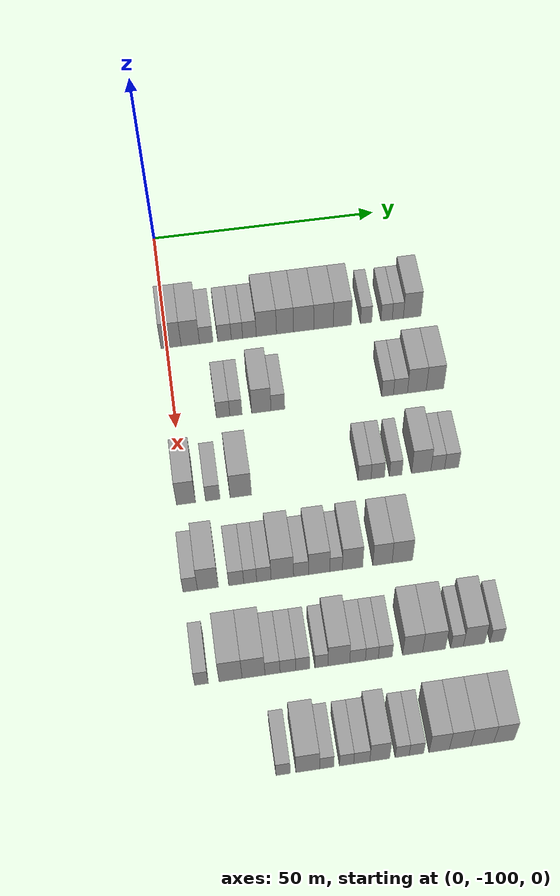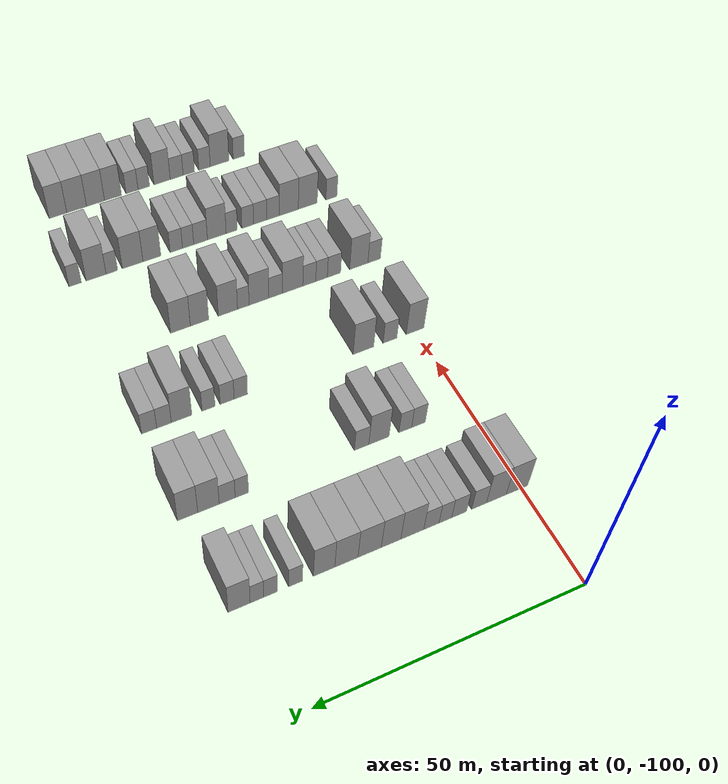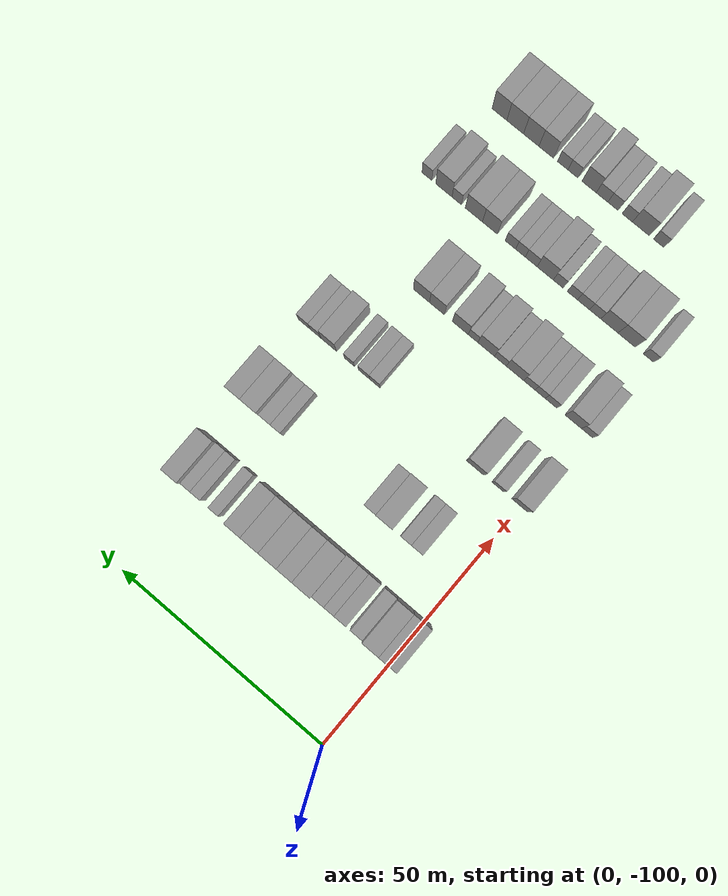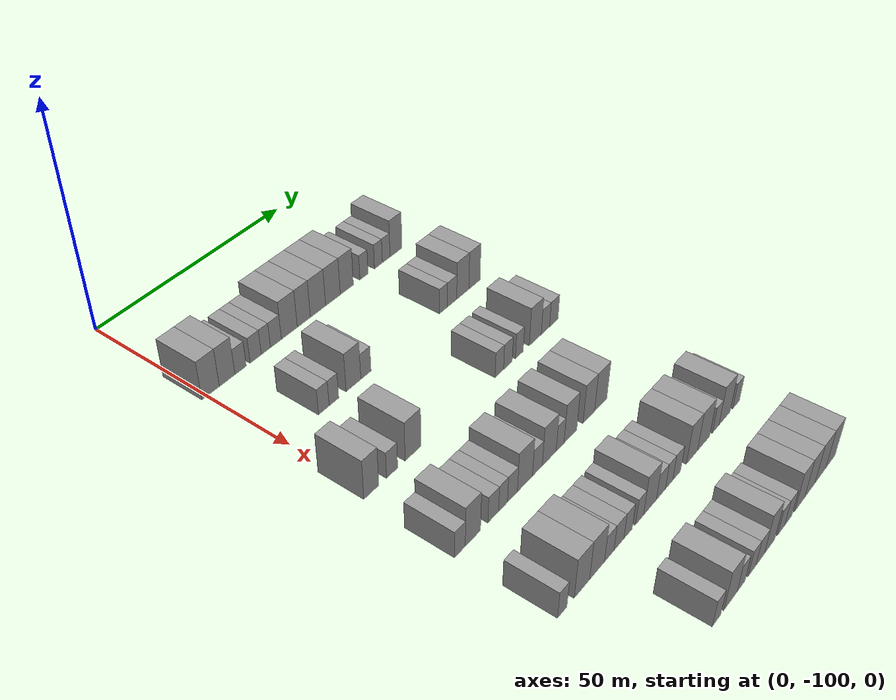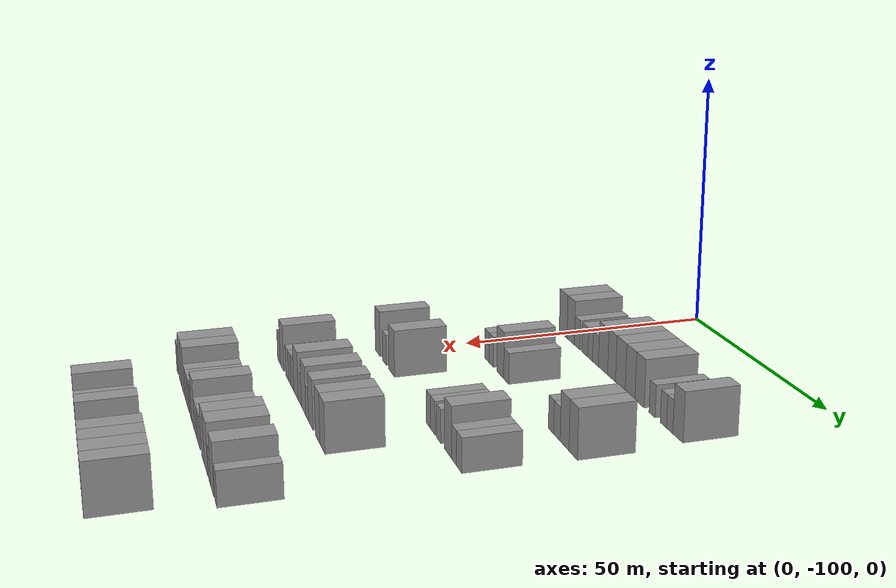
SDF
<sdf version="1.6">
 <world name="default">
  <model name="building_61">
   <static>1</static>
   <pose>25.0000 -99.0919 0 0.000000 0.000000 0.000000</pose>
   <link name="link">
    <pose>0 0 4.50 0 0 0</pose>
    <collision name="collision"><geometry><box><size>10.0000 4.3256 9.0000</size></box></geometry></collision>
    <visual name="visual">
     <cast_shadows>0</cast_shadows>
     <geometry><box><size>10.0000 4.3256 9.0000</size></box></geometry>
     <material>
      <script>
       <uri>model://grey_wall/materials/scripts</uri>
       <uri>model://grey_wall/materials/textures</uri>
       <name>vrc/grey_wall</name>
      </script>
     </material>
    </visual>
   </link>
  </model>
  <model name="building_62">
   <static>1</static>
   <pose>25.0000 -94.9548 0 0.000000 0.000000 0.000000</pose>
   <link name="link">
    <pose>0 0 4.50 0 0 0</pose>
    <collision name="collision"><geometry><box><size>10.0000 3.9485 9.0000</size></box></geometry></collision>
    <visual name="visual">
     <cast_shadows>0</cast_shadows>
     <geometry><box><size>10.0000 3.9485 9.0000</size></box></geometry>
     <material>
      <script>
       <uri>model://grey_wall/materials/scripts</uri>
       <uri>model://grey_wall/materials/textures</uri>
       <name>vrc/grey_wall</name>
      </script>
     </material>
    </visual>
   </link>
  </model>
  <model name="building_63">
   <static>1</static>
   <pose>25.0000 -91.5138 0 0.000000 0.000000 0.000000</pose>
   <link name="link">
    <pose>0 0 3.00 0 0 0</pose>
    <collision name="collision"><geometry><box><size>10.0000 2.9335 6.0000</size></box></geometry></collision>
    <visual name="visual">
     <cast_shadows>0</cast_shadows>
     <geometry><box><size>10.0000 2.9335 6.0000</size></box></geometry>
     <material>
      <script>
       <uri>model://grey_wall/materials/scripts</uri>
       <uri>model://grey_wall/materials/textures</uri>
       <name>vrc/grey_wall</name>
      </script>
     </material>
    </visual>
   </link>
  </model>
  <model name="building_64">
   <static>1</static>
   <pose>25.0000 -87.5771 0 0.000000 0.000000 0.000000</pose>
   <link name="link">
    <pose>0 0 3.00 0 0 0</pose>
    <collision name="collision"><geometry><box><size>10.0000 2.9399 6.0000</size></box></geometry></collision>
    <visual name="visual">
     <cast_shadows>0</cast_shadows>
     <geometry><box><size>10.0000 2.9399 6.0000</size></box></geometry>
     <material>
      <script>
       <uri>model://grey_wall/materials/scripts</uri>
       <uri>model://grey_wall/materials/textures</uri>
       <name>vrc/grey_wall</name>
      </script>
     </material>
    </visual>
   </link>
  </model>
  <model name="building_65">
   <static>1</static>
   <pose>25.0000 -84.8800 0 0.000000 0.000000 0.000000</pose>
   <link name="link">
    <pose>0 0 3.00 0 0 0</pose>
    <collision name="collision"><geometry><box><size>10.0000 2.4543 6.0000</size></box></geometry></collision>
    <visual name="visual">
     <cast_shadows>0</cast_shadows>
     <geometry><box><size>10.0000 2.4543 6.0000</size></box></geometry>
     <material>
      <script>
       <uri>model://grey_wall/materials/scripts</uri>
       <uri>model://grey_wall/materials/textures</uri>
       <name>vrc/grey_wall</name>
      </script>
     </material>
    </visual>
   </link>
  </model>
  <model name="building_66">
   <static>1</static>
   <pose>25.0000 -82.1757 0 0.000000 0.000000 0.000000</pose>
   <link name="link">
    <pose>0 0 3.00 0 0 0</pose>
    <collision name="collision"><geometry><box><size>10.0000 2.9542 6.0000</size></box></geometry></collision>
    <visual name="visual">
     <cast_shadows>0</cast_shadows>
     <geometry><box><size>10.0000 2.9542 6.0000</size></box></geometry>
     <material>
      <script>
       <uri>model://grey_wall/materials/scripts</uri>
       <uri>model://grey_wall/materials/textures</uri>
       <name>vrc/grey_wall</name>
      </script>
     </material>
    </visual>
   </link>
  </model>
  <model name="building_67">
   <static>1</static>
   <pose>25.0000 -78.5030 0 0.000000 0.000000 0.000000</pose>
   <link name="link">
    <pose>0 0 4.50 0 0 0</pose>
    <collision name="collision"><geometry><box><size>10.0000 4.3913 9.0000</size></box></geometry></collision>
    <visual name="visual">
     <cast_shadows>0</cast_shadows>
     <geometry><box><size>10.0000 4.3913 9.0000</size></box></geometry>
     <material>
      <script>
       <uri>model://grey_wall/materials/scripts</uri>
       <uri>model://grey_wall/materials/textures</uri>
       <name>vrc/grey_wall</name>
      </script>
     </material>
    </visual>
   </link>
  </model>
  <model name="building_68">
   <static>1</static>
   <pose>25.0000 -74.4544 0 0.000000 0.000000 0.000000</pose>
   <link name="link">
    <pose>0 0 4.50 0 0 0</pose>
    <collision name="collision"><geometry><box><size>10.0000 3.7057 9.0000</size></box></geometry></collision>
    <visual name="visual">
     <cast_shadows>0</cast_shadows>
     <geometry><box><size>10.0000 3.7057 9.0000</size></box></geometry>
     <material>
      <script>
       <uri>model://grey_wall/materials/scripts</uri>
       <uri>model://grey_wall/materials/textures</uri>
       <name>vrc/grey_wall</name>
      </script>
     </material>
    </visual>
   </link>
  </model>
  <model name="building_69">
   <static>1</static>
   <pose>25.0000 -70.4099 0 0.000000 0.000000 0.000000</pose>
   <link name="link">
    <pose>0 0 4.50 0 0 0</pose>
    <collision name="collision"><geometry><box><size>10.0000 4.3834 9.0000</size></box></geometry></collision>
    <visual name="visual">
     <cast_shadows>0</cast_shadows>
     <geometry><box><size>10.0000 4.3834 9.0000</size></box></geometry>
     <material>
      <script>
       <uri>model://grey_wall/materials/scripts</uri>
       <uri>model://grey_wall/materials/textures</uri>
       <name>vrc/grey_wall</name>
      </script>
     </material>
    </visual>
   </link>
  </model>
  <model name="building_70">
   <static>1</static>
   <pose>25.0000 -66.0621 0 0.000000 0.000000 0.000000</pose>
   <link name="link">
    <pose>0 0 4.50 0 0 0</pose>
    <collision name="collision"><geometry><box><size>10.0000 4.3121 9.0000</size></box></geometry></collision>
    <visual name="visual">
     <cast_shadows>0</cast_shadows>
     <geometry><box><size>10.0000 4.3121 9.0000</size></box></geometry>
     <material>
      <script>
       <uri>model://grey_wall/materials/scripts</uri>
       <uri>model://grey_wall/materials/textures</uri>
       <name>vrc/grey_wall</name>
      </script>
     </material>
    </visual>
   </link>
  </model>
  <model name="building_71">
   <static>1</static>
   <pose>25.0000 -61.9349 0 0.000000 0.000000 0.000000</pose>
   <link name="link">
    <pose>0 0 4.50 0 0 0</pose>
    <collision name="collision"><geometry><box><size>10.0000 3.9423 9.0000</size></box></geometry></collision>
    <visual name="visual">
     <cast_shadows>0</cast_shadows>
     <geometry><box><size>10.0000 3.9423 9.0000</size></box></geometry>
     <material>
      <script>
       <uri>model://grey_wall/materials/scripts</uri>
       <uri>model://grey_wall/materials/textures</uri>
       <name>vrc/grey_wall</name>
      </script>
     </material>
    </visual>
   </link>
  </model>
  <model name="building_72">
   <static>1</static>
   <pose>25.0000 -56.7172 0 0.000000 0.000000 0.000000</pose>
   <link name="link">
    <pose>0 0 3.00 0 0 0</pose>
    <collision name="collision"><geometry><box><size>10.0000 2.4931 6.0000</size></box></geometry></collision>
    <visual name="visual">
     <cast_shadows>0</cast_shadows>
     <geometry><box><size>10.0000 2.4931 6.0000</size></box></geometry>
     <material>
      <script>
       <uri>model://grey_wall/materials/scripts</uri>
       <uri>model://grey_wall/materials/textures</uri>
       <name>vrc/grey_wall</name>
      </script>
     </material>
    </visual>
   </link>
  </model>
  <model name="building_73">
   <static>1</static>
   <pose>25.0000 -52.2281 0 0.000000 0.000000 0.000000</pose>
   <link name="link">
    <pose>0 0 3.00 0 0 0</pose>
    <collision name="collision"><geometry><box><size>10.0000 2.4852 6.0000</size></box></geometry></collision>
    <visual name="visual">
     <cast_shadows>0</cast_shadows>
     <geometry><box><size>10.0000 2.4852 6.0000</size></box></geometry>
     <material>
      <script>
       <uri>model://grey_wall/materials/scripts</uri>
       <uri>model://grey_wall/materials/textures</uri>
       <name>vrc/grey_wall</name>
      </script>
     </material>
    </visual>
   </link>
  </model>
  <model name="building_74">
   <static>1</static>
   <pose>25.0000 -49.7633 0 0.000000 0.000000 0.000000</pose>
   <link name="link">
    <pose>0 0 3.00 0 0 0</pose>
    <collision name="collision"><geometry><box><size>10.0000 2.4444 6.0000</size></box></geometry></collision>
    <visual name="visual">
     <cast_shadows>0</cast_shadows>
     <geometry><box><size>10.0000 2.4444 6.0000</size></box></geometry>
     <material>
      <script>
       <uri>model://grey_wall/materials/scripts</uri>
       <uri>model://grey_wall/materials/textures</uri>
       <name>vrc/grey_wall</name>
      </script>
     </material>
    </visual>
   </link>
  </model>
  <model name="building_75">
   <static>1</static>
   <pose>25.0000 -46.5911 0 0.000000 0.000000 0.000000</pose>
   <link name="link">
    <pose>0 0 4.50 0 0 0</pose>
    <collision name="collision"><geometry><box><size>10.0000 3.9000 9.0000</size></box></geometry></collision>
    <visual name="visual">
     <cast_shadows>0</cast_shadows>
     <geometry><box><size>10.0000 3.9000 9.0000</size></box></geometry>
     <material>
      <script>
       <uri>model://grey_wall/materials/scripts</uri>
       <uri>model://grey_wall/materials/textures</uri>
       <name>vrc/grey_wall</name>
      </script>
     </material>
    </visual>
   </link>
  </model>
  <model name="building_220">
   <static>1</static>
   <pose>44.0000 -90.0922 0 0.000000 0.000000 0.000000</pose>
   <link name="link">
    <pose>0 0 3.00 0 0 0</pose>
    <collision name="collision"><geometry><box><size>10.0000 2.7992 6.0000</size></box></geometry></collision>
    <visual name="visual">
     <cast_shadows>0</cast_shadows>
     <geometry><box><size>10.0000 2.7992 6.0000</size></box></geometry>
     <material>
      <script>
       <uri>model://grey_wall/materials/scripts</uri>
       <uri>model://grey_wall/materials/textures</uri>
       <name>vrc/grey_wall</name>
      </script>
     </material>
    </visual>
   </link>
  </model>
  <model name="building_221">
   <static>1</static>
   <pose>44.0000 -87.4072 0 0.000000 0.000000 0.000000</pose>
   <link name="link">
    <pose>0 0 3.00 0 0 0</pose>
    <collision name="collision"><geometry><box><size>10.0000 2.5708 6.0000</size></box></geometry></collision>
    <visual name="visual">
     <cast_shadows>0</cast_shadows>
     <geometry><box><size>10.0000 2.5708 6.0000</size></box></geometry>
     <material>
      <script>
       <uri>model://grey_wall/materials/scripts</uri>
       <uri>model://grey_wall/materials/textures</uri>
       <name>vrc/grey_wall</name>
      </script>
     </material>
    </visual>
   </link>
  </model>
  <model name="building_222">
   <static>1</static>
   <pose>44.0000 -82.0931 0 0.000000 0.000000 0.000000</pose>
   <link name="link">
    <pose>0 0 4.50 0 0 0</pose>
    <collision name="collision"><geometry><box><size>10.0000 4.0575 9.0000</size></box></geometry></collision>
    <visual name="visual">
     <cast_shadows>0</cast_shadows>
     <geometry><box><size>10.0000 4.0575 9.0000</size></box></geometry>
     <material>
      <script>
       <uri>model://grey_wall/materials/scripts</uri>
       <uri>model://grey_wall/materials/textures</uri>
       <name>vrc/grey_wall</name>
      </script>
     </material>
    </visual>
   </link>
  </model>
  <model name="building_223">
   <static>1</static>
   <pose>44.0000 -78.6224 0 0.000000 0.000000 0.000000</pose>
   <link name="link">
    <pose>0 0 3.00 0 0 0</pose>
    <collision name="collision"><geometry><box><size>10.0000 2.8838 6.0000</size></box></geometry></collision>
    <visual name="visual">
     <cast_shadows>0</cast_shadows>
     <geometry><box><size>10.0000 2.8838 6.0000</size></box></geometry>
     <material>
      <script>
       <uri>model://grey_wall/materials/scripts</uri>
       <uri>model://grey_wall/materials/textures</uri>
       <name>vrc/grey_wall</name>
      </script>
     </material>
    </visual>
   </link>
  </model>
  <model name="building_224">
   <static>1</static>
   <pose>44.0000 -55.4312 0 0.000000 0.000000 0.000000</pose>
   <link name="link">
    <pose>0 0 3.00 0 0 0</pose>
    <collision name="collision"><geometry><box><size>10.0000 2.4996 6.0000</size></box></geometry></collision>
    <visual name="visual">
     <cast_shadows>0</cast_shadows>
     <geometry><box><size>10.0000 2.4996 6.0000</size></box></geometry>
     <material>
      <script>
       <uri>model://grey_wall/materials/scripts</uri>
       <uri>model://grey_wall/materials/textures</uri>
       <name>vrc/grey_wall</name>
      </script>
     </material>
    </visual>
   </link>
  </model>
  <model name="building_225">
   <static>1</static>
   <pose>44.0000 -52.6894 0 0.000000 0.000000 0.000000</pose>
   <link name="link">
    <pose>0 0 3.00 0 0 0</pose>
    <collision name="collision"><geometry><box><size>10.0000 2.9840 6.0000</size></box></geometry></collision>
    <visual name="visual">
     <cast_shadows>0</cast_shadows>
     <geometry><box><size>10.0000 2.9840 6.0000</size></box></geometry>
     <material>
      <script>
       <uri>model://grey_wall/materials/scripts</uri>
       <uri>model://grey_wall/materials/textures</uri>
       <name>vrc/grey_wall</name>
      </script>
     </material>
    </visual>
   </link>
  </model>
  <model name="building_226">
   <static>1</static>
   <pose>44.0000 -49.1990 0 0.000000 0.000000 0.000000</pose>
   <link name="link">
    <pose>0 0 4.50 0 0 0</pose>
    <collision name="collision"><geometry><box><size>10.0000 3.9967 9.0000</size></box></geometry></collision>
    <visual name="visual">
     <cast_shadows>0</cast_shadows>
     <geometry><box><size>10.0000 3.9967 9.0000</size></box></geometry>
     <material>
      <script>
       <uri>model://grey_wall/materials/scripts</uri>
       <uri>model://grey_wall/materials/textures</uri>
       <name>vrc/grey_wall</name>
      </script>
     </material>
    </visual>
   </link>
  </model>
  <model name="building_227">
   <static>1</static>
   <pose>44.0000 -45.3298 0 0.000000 0.000000 0.000000</pose>
   <link name="link">
    <pose>0 0 4.50 0 0 0</pose>
    <collision name="collision"><geometry><box><size>10.0000 3.7417 9.0000</size></box></geometry></collision>
    <visual name="visual">
     <cast_shadows>0</cast_shadows>
     <geometry><box><size>10.0000 3.7417 9.0000</size></box></geometry>
     <material>
      <script>
       <uri>model://grey_wall/materials/scripts</uri>
       <uri>model://grey_wall/materials/textures</uri>
       <name>vrc/grey_wall</name>
      </script>
     </material>
    </visual>
   </link>
  </model>
  <model name="building_392">
   <static>1</static>
   <pose>63.0000 -99.7593 0 0.000000 0.000000 0.000000</pose>
   <link name="link">
    <pose>0 0 4.50 0 0 0</pose>
    <collision name="collision"><geometry><box><size>10.0000 3.8222 9.0000</size></box></geometry></collision>
    <visual name="visual">
     <cast_shadows>0</cast_shadows>
     <geometry><box><size>10.0000 3.8222 9.0000</size></box></geometry>
     <material>
      <script>
       <uri>model://grey_wall/materials/scripts</uri>
       <uri>model://grey_wall/materials/textures</uri>
       <name>vrc/grey_wall</name>
      </script>
     </material>
    </visual>
   </link>
  </model>
  <model name="building_393">
   <static>1</static>
   <pose>63.0000 -94.3771 0 0.000000 0.000000 0.000000</pose>
   <link name="link">
    <pose>0 0 3.00 0 0 0</pose>
    <collision name="collision"><geometry><box><size>10.0000 2.9422 6.0000</size></box></geometry></collision>
    <visual name="visual">
     <cast_shadows>0</cast_shadows>
     <geometry><box><size>10.0000 2.9422 6.0000</size></box></geometry>
     <material>
      <script>
       <uri>model://grey_wall/materials/scripts</uri>
       <uri>model://grey_wall/materials/textures</uri>
       <name>vrc/grey_wall</name>
      </script>
     </material>
    </visual>
   </link>
  </model>
  <model name="building_394">
   <static>1</static>
   <pose>63.0000 -88.7405 0 0.000000 0.000000 0.000000</pose>
   <link name="link">
    <pose>0 0 4.50 0 0 0</pose>
    <collision name="collision"><geometry><box><size>10.0000 4.3309 9.0000</size></box></geometry></collision>
    <visual name="visual">
     <cast_shadows>0</cast_shadows>
     <geometry><box><size>10.0000 4.3309 9.0000</size></box></geometry>
     <material>
      <script>
       <uri>model://grey_wall/materials/scripts</uri>
       <uri>model://grey_wall/materials/textures</uri>
       <name>vrc/grey_wall</name>
      </script>
     </material>
    </visual>
   </link>
  </model>
  <model name="building_395">
   <static>1</static>
   <pose>63.0000 -63.5776 0 0.000000 0.000000 0.000000</pose>
   <link name="link">
    <pose>0 0 3.00 0 0 0</pose>
    <collision name="collision"><geometry><box><size>10.0000 2.6649 6.0000</size></box></geometry></collision>
    <visual name="visual">
     <cast_shadows>0</cast_shadows>
     <geometry><box><size>10.0000 2.6649 6.0000</size></box></geometry>
     <material>
      <script>
       <uri>model://grey_wall/materials/scripts</uri>
       <uri>model://grey_wall/materials/textures</uri>
       <name>vrc/grey_wall</name>
      </script>
     </material>
    </visual>
   </link>
  </model>
  <model name="building_396">
   <static>1</static>
   <pose>63.0000 -60.8622 0 0.000000 0.000000 0.000000</pose>
   <link name="link">
    <pose>0 0 3.00 0 0 0</pose>
    <collision name="collision"><geometry><box><size>10.0000 2.7658 6.0000</size></box></geometry></collision>
    <visual name="visual">
     <cast_shadows>0</cast_shadows>
     <geometry><box><size>10.0000 2.7658 6.0000</size></box></geometry>
     <material>
      <script>
       <uri>model://grey_wall/materials/scripts</uri>
       <uri>model://grey_wall/materials/textures</uri>
       <name>vrc/grey_wall</name>
      </script>
     </material>
    </visual>
   </link>
  </model>
  <model name="building_397">
   <static>1</static>
   <pose>63.0000 -57.1977 0 0.000000 0.000000 0.000000</pose>
   <link name="link">
    <pose>0 0 3.00 0 0 0</pose>
    <collision name="collision"><geometry><box><size>10.0000 2.5633 6.0000</size></box></geometry></collision>
    <visual name="visual">
     <cast_shadows>0</cast_shadows>
     <geometry><box><size>10.0000 2.5633 6.0000</size></box></geometry>
     <material>
      <script>
       <uri>model://grey_wall/materials/scripts</uri>
       <uri>model://grey_wall/materials/textures</uri>
       <name>vrc/grey_wall</name>
      </script>
     </material>
    </visual>
   </link>
  </model>
  <model name="building_398">
   <static>1</static>
   <pose>63.0000 -51.9292 0 0.000000 0.000000 0.000000</pose>
   <link name="link">
    <pose>0 0 4.50 0 0 0</pose>
    <collision name="collision"><geometry><box><size>10.0000 3.9737 9.0000</size></box></geometry></collision>
    <visual name="visual">
     <cast_shadows>0</cast_shadows>
     <geometry><box><size>10.0000 3.9737 9.0000</size></box></geometry>
     <material>
      <script>
       <uri>model://grey_wall/materials/scripts</uri>
       <uri>model://grey_wall/materials/textures</uri>
       <name>vrc/grey_wall</name>
      </script>
     </material>
    </visual>
   </link>
  </model>
  <model name="building_399">
   <static>1</static>
   <pose>63.0000 -48.5296 0 0.000000 0.000000 0.000000</pose>
   <link name="link">
    <pose>0 0 3.00 0 0 0</pose>
    <collision name="collision"><geometry><box><size>10.0000 2.8256 6.0000</size></box></geometry></collision>
    <visual name="visual">
     <cast_shadows>0</cast_shadows>
     <geometry><box><size>10.0000 2.8256 6.0000</size></box></geometry>
     <material>
      <script>
       <uri>model://grey_wall/materials/scripts</uri>
       <uri>model://grey_wall/materials/textures</uri>
       <name>vrc/grey_wall</name>
      </script>
     </material>
    </visual>
   </link>
  </model>
  <model name="building_400">
   <static>1</static>
   <pose>63.0000 -45.6621 0 0.000000 0.000000 0.000000</pose>
   <link name="link">
    <pose>0 0 3.00 0 0 0</pose>
    <collision name="collision"><geometry><box><size>10.0000 2.9095 6.0000</size></box></geometry></collision>
    <visual name="visual">
     <cast_shadows>0</cast_shadows>
     <geometry><box><size>10.0000 2.9095 6.0000</size></box></geometry>
     <material>
      <script>
       <uri>model://grey_wall/materials/scripts</uri>
       <uri>model://grey_wall/materials/textures</uri>
       <name>vrc/grey_wall</name>
      </script>
     </material>
    </visual>
   </link>
  </model>
  <model name="building_561">
   <static>1</static>
   <pose>82.0000 -100.8853 0 0.000000 0.000000 0.000000</pose>
   <link name="link">
    <pose>0 0 3.00 0 0 0</pose>
    <collision name="collision"><geometry><box><size>10.0000 2.7928 6.0000</size></box></geometry></collision>
    <visual name="visual">
     <cast_shadows>0</cast_shadows>
     <geometry><box><size>10.0000 2.7928 6.0000</size></box></geometry>
     <material>
      <script>
       <uri>model://grey_wall/materials/scripts</uri>
       <uri>model://grey_wall/materials/textures</uri>
       <name>vrc/grey_wall</name>
      </script>
     </material>
    </visual>
   </link>
  </model>
  <model name="building_562">
   <static>1</static>
   <pose>82.0000 -97.4596 0 0.000000 0.000000 0.000000</pose>
   <link name="link">
    <pose>0 0 4.50 0 0 0</pose>
    <collision name="collision"><geometry><box><size>10.0000 4.0586 9.0000</size></box></geometry></collision>
    <visual name="visual">
     <cast_shadows>0</cast_shadows>
     <geometry><box><size>10.0000 4.0586 9.0000</size></box></geometry>
     <material>
      <script>
       <uri>model://grey_wall/materials/scripts</uri>
       <uri>model://grey_wall/materials/textures</uri>
       <name>vrc/grey_wall</name>
      </script>
     </material>
    </visual>
   </link>
  </model>
  <model name="building_563">
   <static>1</static>
   <pose>82.0000 -91.9659 0 0.000000 0.000000 0.000000</pose>
   <link name="link">
    <pose>0 0 3.00 0 0 0</pose>
    <collision name="collision"><geometry><box><size>10.0000 2.9287 6.0000</size></box></geometry></collision>
    <visual name="visual">
     <cast_shadows>0</cast_shadows>
     <geometry><box><size>10.0000 2.9287 6.0000</size></box></geometry>
     <material>
      <script>
       <uri>model://grey_wall/materials/scripts</uri>
       <uri>model://grey_wall/materials/textures</uri>
       <name>vrc/grey_wall</name>
      </script>
     </material>
    </visual>
   </link>
  </model>
  <model name="building_564">
   <static>1</static>
   <pose>82.0000 -89.2395 0 0.000000 0.000000 0.000000</pose>
   <link name="link">
    <pose>0 0 3.00 0 0 0</pose>
    <collision name="collision"><geometry><box><size>10.0000 2.5241 6.0000</size></box></geometry></collision>
    <visual name="visual">
     <cast_shadows>0</cast_shadows>
     <geometry><box><size>10.0000 2.5241 6.0000</size></box></geometry>
     <material>
      <script>
       <uri>model://grey_wall/materials/scripts</uri>
       <uri>model://grey_wall/materials/textures</uri>
       <name>vrc/grey_wall</name>
      </script>
     </material>
    </visual>
   </link>
  </model>
  <model name="building_565">
   <static>1</static>
   <pose>82.0000 -86.5752 0 0.000000 0.000000 0.000000</pose>
   <link name="link">
    <pose>0 0 3.00 0 0 0</pose>
    <collision name="collision"><geometry><box><size>10.0000 2.8046 6.0000</size></box></geometry></collision>
    <visual name="visual">
     <cast_shadows>0</cast_shadows>
     <geometry><box><size>10.0000 2.8046 6.0000</size></box></geometry>
     <material>
      <script>
       <uri>model://grey_wall/materials/scripts</uri>
       <uri>model://grey_wall/materials/textures</uri>
       <name>vrc/grey_wall</name>
      </script>
     </material>
    </visual>
   </link>
  </model>
  <model name="building_566">
   <static>1</static>
   <pose>82.0000 -82.9776 0 0.000000 0.000000 0.000000</pose>
   <link name="link">
    <pose>0 0 4.50 0 0 0</pose>
    <collision name="collision"><geometry><box><size>10.0000 4.3905 9.0000</size></box></geometry></collision>
    <visual name="visual">
     <cast_shadows>0</cast_shadows>
     <geometry><box><size>10.0000 4.3905 9.0000</size></box></geometry>
     <material>
      <script>
       <uri>model://grey_wall/materials/scripts</uri>
       <uri>model://grey_wall/materials/textures</uri>
       <name>vrc/grey_wall</name>
      </script>
     </material>
    </visual>
   </link>
  </model>
  <model name="building_567">
   <static>1</static>
   <pose>82.0000 -79.3139 0 0.000000 0.000000 0.000000</pose>
   <link name="link">
    <pose>0 0 3.00 0 0 0</pose>
    <collision name="collision"><geometry><box><size>10.0000 2.9370 6.0000</size></box></geometry></collision>
    <visual name="visual">
     <cast_shadows>0</cast_shadows>
     <geometry><box><size>10.0000 2.9370 6.0000</size></box></geometry>
     <material>
      <script>
       <uri>model://grey_wall/materials/scripts</uri>
       <uri>model://grey_wall/materials/textures</uri>
       <name>vrc/grey_wall</name>
      </script>
     </material>
    </visual>
   </link>
  </model>
  <model name="building_568">
   <static>1</static>
   <pose>82.0000 -75.7535 0 0.000000 0.000000 0.000000</pose>
   <link name="link">
    <pose>0 0 4.50 0 0 0</pose>
    <collision name="collision"><geometry><box><size>10.0000 4.1837 9.0000</size></box></geometry></collision>
    <visual name="visual">
     <cast_shadows>0</cast_shadows>
     <geometry><box><size>10.0000 4.1837 9.0000</size></box></geometry>
     <material>
      <script>
       <uri>model://grey_wall/materials/scripts</uri>
       <uri>model://grey_wall/materials/textures</uri>
       <name>vrc/grey_wall</name>
      </script>
     </material>
    </visual>
   </link>
  </model>
  <model name="building_569">
   <static>1</static>
   <pose>82.0000 -72.4386 0 0.000000 0.000000 0.000000</pose>
   <link name="link">
    <pose>0 0 3.00 0 0 0</pose>
    <collision name="collision"><geometry><box><size>10.0000 2.4463 6.0000</size></box></geometry></collision>
    <visual name="visual">
     <cast_shadows>0</cast_shadows>
     <geometry><box><size>10.0000 2.4463 6.0000</size></box></geometry>
     <material>
      <script>
       <uri>model://grey_wall/materials/scripts</uri>
       <uri>model://grey_wall/materials/textures</uri>
       <name>vrc/grey_wall</name>
      </script>
     </material>
    </visual>
   </link>
  </model>
  <model name="building_570">
   <static>1</static>
   <pose>82.0000 -69.2033 0 0.000000 0.000000 0.000000</pose>
   <link name="link">
    <pose>0 0 4.50 0 0 0</pose>
    <collision name="collision"><geometry><box><size>10.0000 4.0243 9.0000</size></box></geometry></collision>
    <visual name="visual">
     <cast_shadows>0</cast_shadows>
     <geometry><box><size>10.0000 4.0243 9.0000</size></box></geometry>
     <material>
      <script>
       <uri>model://grey_wall/materials/scripts</uri>
       <uri>model://grey_wall/materials/textures</uri>
       <name>vrc/grey_wall</name>
      </script>
     </material>
    </visual>
   </link>
  </model>
  <model name="building_571">
   <static>1</static>
   <pose>82.0000 -63.3000 0 0.000000 0.000000 0.000000</pose>
   <link name="link">
    <pose>0 0 4.50 0 0 0</pose>
    <collision name="collision"><geometry><box><size>10.0000 3.7823 9.0000</size></box></geometry></collision>
    <visual name="visual">
     <cast_shadows>0</cast_shadows>
     <geometry><box><size>10.0000 3.7823 9.0000</size></box></geometry>
     <material>
      <script>
       <uri>model://grey_wall/materials/scripts</uri>
       <uri>model://grey_wall/materials/textures</uri>
       <name>vrc/grey_wall</name>
      </script>
     </material>
    </visual>
   </link>
  </model>
  <model name="building_572">
   <static>1</static>
   <pose>82.0000 -59.3717 0 0.000000 0.000000 0.000000</pose>
   <link name="link">
    <pose>0 0 4.50 0 0 0</pose>
    <collision name="collision"><geometry><box><size>10.0000 4.0742 9.0000</size></box></geometry></collision>
    <visual name="visual">
     <cast_shadows>0</cast_shadows>
     <geometry><box><size>10.0000 4.0742 9.0000</size></box></geometry>
     <material>
      <script>
       <uri>model://grey_wall/materials/scripts</uri>
       <uri>model://grey_wall/materials/textures</uri>
       <name>vrc/grey_wall</name>
      </script>
     </material>
    </visual>
   </link>
  </model>
  <model name="building_730">
   <static>1</static>
   <pose>101.0000 -100.7752 0 0.000000 0.000000 0.000000</pose>
   <link name="link">
    <pose>0 0 3.00 0 0 0</pose>
    <collision name="collision"><geometry><box><size>10.0000 2.5496 6.0000</size></box></geometry></collision>
    <visual name="visual">
     <cast_shadows>0</cast_shadows>
     <geometry><box><size>10.0000 2.5496 6.0000</size></box></geometry>
     <material>
      <script>
       <uri>model://grey_wall/materials/scripts</uri>
       <uri>model://grey_wall/materials/textures</uri>
       <name>vrc/grey_wall</name>
      </script>
     </material>
    </visual>
   </link>
  </model>
  <model name="building_731">
   <static>1</static>
   <pose>101.0000 -95.3427 0 0.000000 0.000000 0.000000</pose>
   <link name="link">
    <pose>0 0 4.50 0 0 0</pose>
    <collision name="collision"><geometry><box><size>10.0000 4.3153 9.0000</size></box></geometry></collision>
    <visual name="visual">
     <cast_shadows>0</cast_shadows>
     <geometry><box><size>10.0000 4.3153 9.0000</size></box></geometry>
     <material>
      <script>
       <uri>model://grey_wall/materials/scripts</uri>
       <uri>model://grey_wall/materials/textures</uri>
       <name>vrc/grey_wall</name>
      </script>
     </material>
    </visual>
   </link>
  </model>
  <model name="building_732">
   <static>1</static>
   <pose>101.0000 -91.0381 0 0.000000 0.000000 0.000000</pose>
   <link name="link">
    <pose>0 0 4.50 0 0 0</pose>
    <collision name="collision"><geometry><box><size>10.0000 4.2939 9.0000</size></box></geometry></collision>
    <visual name="visual">
     <cast_shadows>0</cast_shadows>
     <geometry><box><size>10.0000 4.2939 9.0000</size></box></geometry>
     <material>
      <script>
       <uri>model://grey_wall/materials/scripts</uri>
       <uri>model://grey_wall/materials/textures</uri>
       <name>vrc/grey_wall</name>
      </script>
     </material>
    </visual>
   </link>
  </model>
  <model name="building_733">
   <static>1</static>
   <pose>101.0000 -87.4756 0 0.000000 0.000000 0.000000</pose>
   <link name="link">
    <pose>0 0 3.00 0 0 0</pose>
    <collision name="collision"><geometry><box><size>10.0000 2.8309 6.0000</size></box></geometry></collision>
    <visual name="visual">
     <cast_shadows>0</cast_shadows>
     <geometry><box><size>10.0000 2.8309 6.0000</size></box></geometry>
     <material>
      <script>
       <uri>model://grey_wall/materials/scripts</uri>
       <uri>model://grey_wall/materials/textures</uri>
       <name>vrc/grey_wall</name>
      </script>
     </material>
    </visual>
   </link>
  </model>
  <model name="building_734">
   <static>1</static>
   <pose>101.0000 -84.5750 0 0.000000 0.000000 0.000000</pose>
   <link name="link">
    <pose>0 0 3.00 0 0 0</pose>
    <collision name="collision"><geometry><box><size>10.0000 2.9704 6.0000</size></box></geometry></collision>
    <visual name="visual">
     <cast_shadows>0</cast_shadows>
     <geometry><box><size>10.0000 2.9704 6.0000</size></box></geometry>
     <material>
      <script>
       <uri>model://grey_wall/materials/scripts</uri>
       <uri>model://grey_wall/materials/textures</uri>
       <name>vrc/grey_wall</name>
      </script>
     </material>
    </visual>
   </link>
  </model>
  <model name="building_735">
   <static>1</static>
   <pose>101.0000 -81.7910 0 0.000000 0.000000 0.000000</pose>
   <link name="link">
    <pose>0 0 3.00 0 0 0</pose>
    <collision name="collision"><geometry><box><size>10.0000 2.5975 6.0000</size></box></geometry></collision>
    <visual name="visual">
     <cast_shadows>0</cast_shadows>
     <geometry><box><size>10.0000 2.5975 6.0000</size></box></geometry>
     <material>
      <script>
       <uri>model://grey_wall/materials/scripts</uri>
       <uri>model://grey_wall/materials/textures</uri>
       <name>vrc/grey_wall</name>
      </script>
     </material>
    </visual>
   </link>
  </model>
  <model name="building_736">
   <static>1</static>
   <pose>101.0000 -78.2462 0 0.000000 0.000000 0.000000</pose>
   <link name="link">
    <pose>0 0 3.00 0 0 0</pose>
    <collision name="collision"><geometry><box><size>10.0000 2.4922 6.0000</size></box></geometry></collision>
    <visual name="visual">
     <cast_shadows>0</cast_shadows>
     <geometry><box><size>10.0000 2.4922 6.0000</size></box></geometry>
     <material>
      <script>
       <uri>model://grey_wall/materials/scripts</uri>
       <uri>model://grey_wall/materials/textures</uri>
       <name>vrc/grey_wall</name>
      </script>
     </material>
    </visual>
   </link>
  </model>
  <model name="building_737">
   <static>1</static>
   <pose>101.0000 -74.9540 0 0.000000 0.000000 0.000000</pose>
   <link name="link">
    <pose>0 0 4.50 0 0 0</pose>
    <collision name="collision"><geometry><box><size>10.0000 4.0922 9.0000</size></box></geometry></collision>
    <visual name="visual">
     <cast_shadows>0</cast_shadows>
     <geometry><box><size>10.0000 4.0922 9.0000</size></box></geometry>
     <material>
      <script>
       <uri>model://grey_wall/materials/scripts</uri>
       <uri>model://grey_wall/materials/textures</uri>
       <name>vrc/grey_wall</name>
      </script>
     </material>
    </visual>
   </link>
  </model>
  <model name="building_738">
   <static>1</static>
   <pose>101.0000 -71.4143 0 0.000000 0.000000 0.000000</pose>
   <link name="link">
    <pose>0 0 3.00 0 0 0</pose>
    <collision name="collision"><geometry><box><size>10.0000 2.9872 6.0000</size></box></geometry></collision>
    <visual name="visual">
     <cast_shadows>0</cast_shadows>
     <geometry><box><size>10.0000 2.9872 6.0000</size></box></geometry>
     <material>
      <script>
       <uri>model://grey_wall/materials/scripts</uri>
       <uri>model://grey_wall/materials/textures</uri>
       <name>vrc/grey_wall</name>
      </script>
     </material>
    </visual>
   </link>
  </model>
  <model name="building_739">
   <static>1</static>
   <pose>101.0000 -68.7052 0 0.000000 0.000000 0.000000</pose>
   <link name="link">
    <pose>0 0 3.00 0 0 0</pose>
    <collision name="collision"><geometry><box><size>10.0000 2.4309 6.0000</size></box></geometry></collision>
    <visual name="visual">
     <cast_shadows>0</cast_shadows>
     <geometry><box><size>10.0000 2.4309 6.0000</size></box></geometry>
     <material>
      <script>
       <uri>model://grey_wall/materials/scripts</uri>
       <uri>model://grey_wall/materials/textures</uri>
       <name>vrc/grey_wall</name>
      </script>
     </material>
    </visual>
   </link>
  </model>
  <model name="building_740">
   <static>1</static>
   <pose>101.0000 -66.1566 0 0.000000 0.000000 0.000000</pose>
   <link name="link">
    <pose>0 0 3.00 0 0 0</pose>
    <collision name="collision"><geometry><box><size>10.0000 2.6663 6.0000</size></box></geometry></collision>
    <visual name="visual">
     <cast_shadows>0</cast_shadows>
     <geometry><box><size>10.0000 2.6663 6.0000</size></box></geometry>
     <material>
      <script>
       <uri>model://grey_wall/materials/scripts</uri>
       <uri>model://grey_wall/materials/textures</uri>
       <name>vrc/grey_wall</name>
      </script>
     </material>
    </visual>
   </link>
  </model>
  <model name="building_741">
   <static>1</static>
   <pose>101.0000 -60.9216 0 0.000000 0.000000 0.000000</pose>
   <link name="link">
    <pose>0 0 4.50 0 0 0</pose>
    <collision name="collision"><geometry><box><size>10.0000 3.8037 9.0000</size></box></geometry></collision>
    <visual name="visual">
     <cast_shadows>0</cast_shadows>
     <geometry><box><size>10.0000 3.8037 9.0000</size></box></geometry>
     <material>
      <script>
       <uri>model://grey_wall/materials/scripts</uri>
       <uri>model://grey_wall/materials/textures</uri>
       <name>vrc/grey_wall</name>
      </script>
     </material>
    </visual>
   </link>
  </model>
  <model name="building_742">
   <static>1</static>
   <pose>101.0000 -56.8356 0 0.000000 0.000000 0.000000</pose>
   <link name="link">
    <pose>0 0 4.50 0 0 0</pose>
    <collision name="collision"><geometry><box><size>10.0000 4.3682 9.0000</size></box></geometry></collision>
    <visual name="visual">
     <cast_shadows>0</cast_shadows>
     <geometry><box><size>10.0000 4.3682 9.0000</size></box></geometry>
     <material>
      <script>
       <uri>model://grey_wall/materials/scripts</uri>
       <uri>model://grey_wall/materials/textures</uri>
       <name>vrc/grey_wall</name>
      </script>
     </material>
    </visual>
   </link>
  </model>
  <model name="building_743">
   <static>1</static>
   <pose>101.0000 -52.4413 0 0.000000 0.000000 0.000000</pose>
   <link name="link">
    <pose>0 0 3.00 0 0 0</pose>
    <collision name="collision"><geometry><box><size>10.0000 2.4203 6.0000</size></box></geometry></collision>
    <visual name="visual">
     <cast_shadows>0</cast_shadows>
     <geometry><box><size>10.0000 2.4203 6.0000</size></box></geometry>
     <material>
      <script>
       <uri>model://grey_wall/materials/scripts</uri>
       <uri>model://grey_wall/materials/textures</uri>
       <name>vrc/grey_wall</name>
      </script>
     </material>
    </visual>
   </link>
  </model>
  <model name="building_744">
   <static>1</static>
   <pose>101.0000 -49.1548 0 0.000000 0.000000 0.000000</pose>
   <link name="link">
    <pose>0 0 4.50 0 0 0</pose>
    <collision name="collision"><geometry><box><size>10.0000 4.1528 9.0000</size></box></geometry></collision>
    <visual name="visual">
     <cast_shadows>0</cast_shadows>
     <geometry><box><size>10.0000 4.1528 9.0000</size></box></geometry>
     <material>
      <script>
       <uri>model://grey_wall/materials/scripts</uri>
       <uri>model://grey_wall/materials/textures</uri>
       <name>vrc/grey_wall</name>
      </script>
     </material>
    </visual>
   </link>
  </model>
  <model name="building_745">
   <static>1</static>
   <pose>101.0000 -44.8079 0 0.000000 0.000000 0.000000</pose>
   <link name="link">
    <pose>0 0 3.00 0 0 0</pose>
    <collision name="collision"><geometry><box><size>10.0000 2.5410 6.0000</size></box></geometry></collision>
    <visual name="visual">
     <cast_shadows>0</cast_shadows>
     <geometry><box><size>10.0000 2.5410 6.0000</size></box></geometry>
     <material>
      <script>
       <uri>model://grey_wall/materials/scripts</uri>
       <uri>model://grey_wall/materials/textures</uri>
       <name>vrc/grey_wall</name>
      </script>
     </material>
    </visual>
   </link>
  </model>
  <model name="building_906">
   <static>1</static>
   <pose>120.0000 -88.1248 0 0.000000 0.000000 0.000000</pose>
   <link name="link">
    <pose>0 0 3.00 0 0 0</pose>
    <collision name="collision"><geometry><box><size>10.0000 2.6106 6.0000</size></box></geometry></collision>
    <visual name="visual">
     <cast_shadows>0</cast_shadows>
     <geometry><box><size>10.0000 2.6106 6.0000</size></box></geometry>
     <material>
      <script>
       <uri>model://grey_wall/materials/scripts</uri>
       <uri>model://grey_wall/materials/textures</uri>
       <name>vrc/grey_wall</name>
      </script>
     </material>
    </visual>
   </link>
  </model>
  <model name="building_907">
   <static>1</static>
   <pose>120.0000 -83.6749 0 0.000000 0.000000 0.000000</pose>
   <link name="link">
    <pose>0 0 4.50 0 0 0</pose>
    <collision name="collision"><geometry><box><size>10.0000 4.2891 9.0000</size></box></geometry></collision>
    <visual name="visual">
     <cast_shadows>0</cast_shadows>
     <geometry><box><size>10.0000 4.2891 9.0000</size></box></geometry>
     <material>
      <script>
       <uri>model://grey_wall/materials/scripts</uri>
       <uri>model://grey_wall/materials/textures</uri>
       <name>vrc/grey_wall</name>
      </script>
     </material>
    </visual>
   </link>
  </model>
  <model name="building_908">
   <static>1</static>
   <pose>120.0000 -80.2241 0 0.000000 0.000000 0.000000</pose>
   <link name="link">
    <pose>0 0 3.00 0 0 0</pose>
    <collision name="collision"><geometry><box><size>10.0000 2.6125 6.0000</size></box></geometry></collision>
    <visual name="visual">
     <cast_shadows>0</cast_shadows>
     <geometry><box><size>10.0000 2.6125 6.0000</size></box></geometry>
     <material>
      <script>
       <uri>model://grey_wall/materials/scripts</uri>
       <uri>model://grey_wall/materials/textures</uri>
       <name>vrc/grey_wall</name>
      </script>
     </material>
    </visual>
   </link>
  </model>
  <model name="building_909">
   <static>1</static>
   <pose>120.0000 -76.6199 0 0.000000 0.000000 0.000000</pose>
   <link name="link">
    <pose>0 0 3.00 0 0 0</pose>
    <collision name="collision"><geometry><box><size>10.0000 2.5960 6.0000</size></box></geometry></collision>
    <visual name="visual">
     <cast_shadows>0</cast_shadows>
     <geometry><box><size>10.0000 2.5960 6.0000</size></box></geometry>
     <material>
      <script>
       <uri>model://grey_wall/materials/scripts</uri>
       <uri>model://grey_wall/materials/textures</uri>
       <name>vrc/grey_wall</name>
      </script>
     </material>
    </visual>
   </link>
  </model>
  <model name="building_910">
   <static>1</static>
   <pose>120.0000 -73.8537 0 0.000000 0.000000 0.000000</pose>
   <link name="link">
    <pose>0 0 3.00 0 0 0</pose>
    <collision name="collision"><geometry><box><size>10.0000 2.9364 6.0000</size></box></geometry></collision>
    <visual name="visual">
     <cast_shadows>0</cast_shadows>
     <geometry><box><size>10.0000 2.9364 6.0000</size></box></geometry>
     <material>
      <script>
       <uri>model://grey_wall/materials/scripts</uri>
       <uri>model://grey_wall/materials/textures</uri>
       <name>vrc/grey_wall</name>
      </script>
     </material>
    </visual>
   </link>
  </model>
  <model name="building_911">
   <static>1</static>
   <pose>120.0000 -70.5653 0 0.000000 0.000000 0.000000</pose>
   <link name="link">
    <pose>0 0 4.50 0 0 0</pose>
    <collision name="collision"><geometry><box><size>10.0000 3.6403 9.0000</size></box></geometry></collision>
    <visual name="visual">
     <cast_shadows>0</cast_shadows>
     <geometry><box><size>10.0000 3.6403 9.0000</size></box></geometry>
     <material>
      <script>
       <uri>model://grey_wall/materials/scripts</uri>
       <uri>model://grey_wall/materials/textures</uri>
       <name>vrc/grey_wall</name>
      </script>
     </material>
    </visual>
   </link>
  </model>
  <model name="building_912">
   <static>1</static>
   <pose>120.0000 -66.4638 0 0.000000 0.000000 0.000000</pose>
   <link name="link">
    <pose>0 0 3.00 0 0 0</pose>
    <collision name="collision"><geometry><box><size>10.0000 2.5627 6.0000</size></box></geometry></collision>
    <visual name="visual">
     <cast_shadows>0</cast_shadows>
     <geometry><box><size>10.0000 2.5627 6.0000</size></box></geometry>
     <material>
      <script>
       <uri>model://grey_wall/materials/scripts</uri>
       <uri>model://grey_wall/materials/textures</uri>
       <name>vrc/grey_wall</name>
      </script>
     </material>
    </visual>
   </link>
  </model>
  <model name="building_913">
   <static>1</static>
   <pose>120.0000 -63.8465 0 0.000000 0.000000 0.000000</pose>
   <link name="link">
    <pose>0 0 3.00 0 0 0</pose>
    <collision name="collision"><geometry><box><size>10.0000 2.6718 6.0000</size></box></geometry></collision>
    <visual name="visual">
     <cast_shadows>0</cast_shadows>
     <geometry><box><size>10.0000 2.6718 6.0000</size></box></geometry>
     <material>
      <script>
       <uri>model://grey_wall/materials/scripts</uri>
       <uri>model://grey_wall/materials/textures</uri>
       <name>vrc/grey_wall</name>
      </script>
     </material>
    </visual>
   </link>
  </model>
  <model name="building_914">
   <static>1</static>
   <pose>120.0000 -59.6447 0 0.000000 0.000000 0.000000</pose>
   <link name="link">
    <pose>0 0 4.50 0 0 0</pose>
    <collision name="collision"><geometry><box><size>10.0000 3.7320 9.0000</size></box></geometry></collision>
    <visual name="visual">
     <cast_shadows>0</cast_shadows>
     <geometry><box><size>10.0000 3.7320 9.0000</size></box></geometry>
     <material>
      <script>
       <uri>model://grey_wall/materials/scripts</uri>
       <uri>model://grey_wall/materials/textures</uri>
       <name>vrc/grey_wall</name>
      </script>
     </material>
    </visual>
   </link>
  </model>
  <model name="building_915">
   <static>1</static>
   <pose>120.0000 -55.8078 0 0.000000 0.000000 0.000000</pose>
   <link name="link">
    <pose>0 0 4.50 0 0 0</pose>
    <collision name="collision"><geometry><box><size>10.0000 3.9417 9.0000</size></box></geometry></collision>
    <visual name="visual">
     <cast_shadows>0</cast_shadows>
     <geometry><box><size>10.0000 3.9417 9.0000</size></box></geometry>
     <material>
      <script>
       <uri>model://grey_wall/materials/scripts</uri>
       <uri>model://grey_wall/materials/textures</uri>
       <name>vrc/grey_wall</name>
      </script>
     </material>
    </visual>
   </link>
  </model>
  <model name="building_916">
   <static>1</static>
   <pose>120.0000 -51.7002 0 0.000000 0.000000 0.000000</pose>
   <link name="link">
    <pose>0 0 4.50 0 0 0</pose>
    <collision name="collision"><geometry><box><size>10.0000 4.2737 9.0000</size></box></geometry></collision>
    <visual name="visual">
     <cast_shadows>0</cast_shadows>
     <geometry><box><size>10.0000 4.2737 9.0000</size></box></geometry>
     <material>
      <script>
       <uri>model://grey_wall/materials/scripts</uri>
       <uri>model://grey_wall/materials/textures</uri>
       <name>vrc/grey_wall</name>
      </script>
     </material>
    </visual>
   </link>
  </model>
  <model name="building_917">
   <static>1</static>
   <pose>120.0000 -47.6621 0 0.000000 0.000000 0.000000</pose>
   <link name="link">
    <pose>0 0 4.50 0 0 0</pose>
    <collision name="collision"><geometry><box><size>10.0000 3.8024 9.0000</size></box></geometry></collision>
    <visual name="visual">
     <cast_shadows>0</cast_shadows>
     <geometry><box><size>10.0000 3.8024 9.0000</size></box></geometry>
     <material>
      <script>
       <uri>model://grey_wall/materials/scripts</uri>
       <uri>model://grey_wall/materials/textures</uri>
       <name>vrc/grey_wall</name>
      </script>
     </material>
    </visual>
   </link>
  </model>
 </world>
</sdf>
